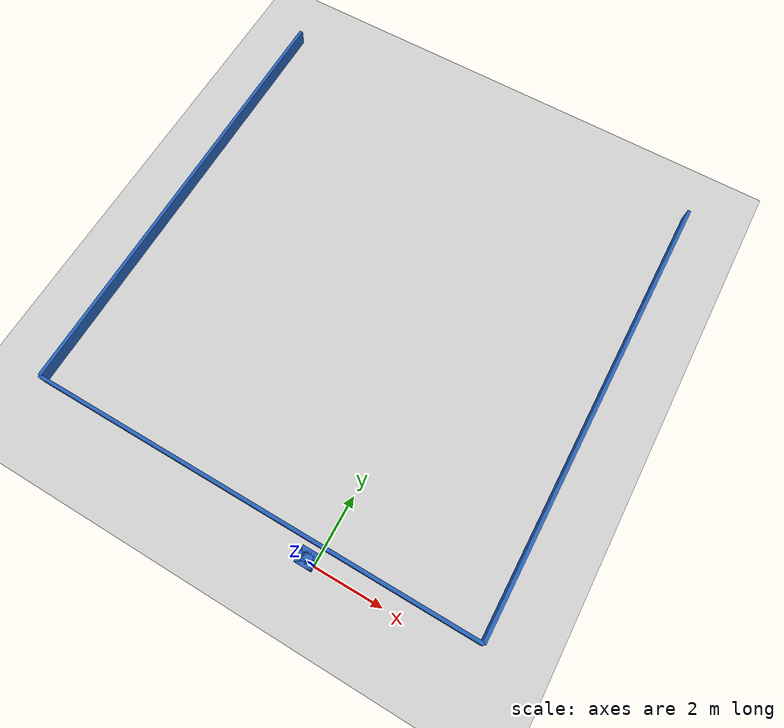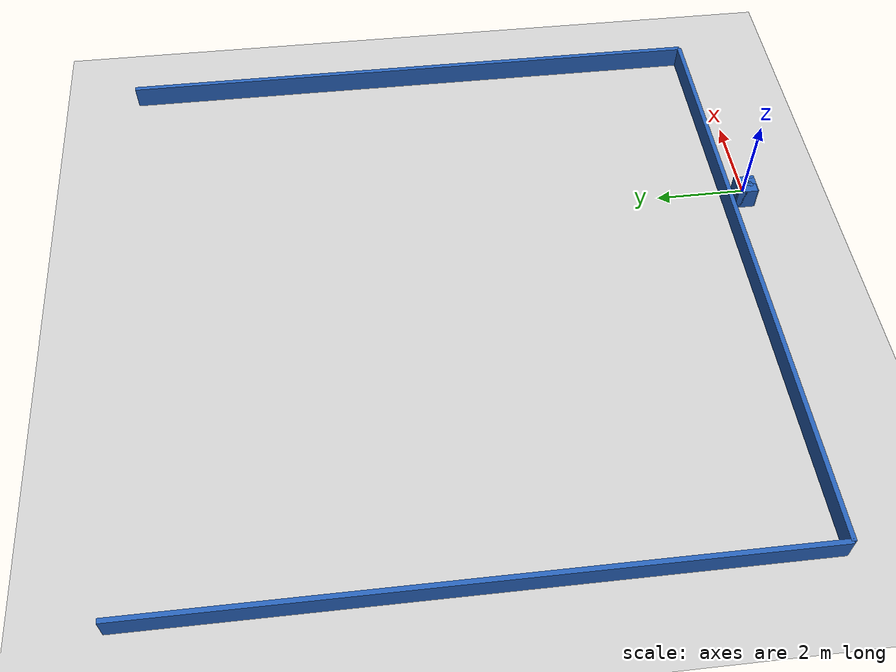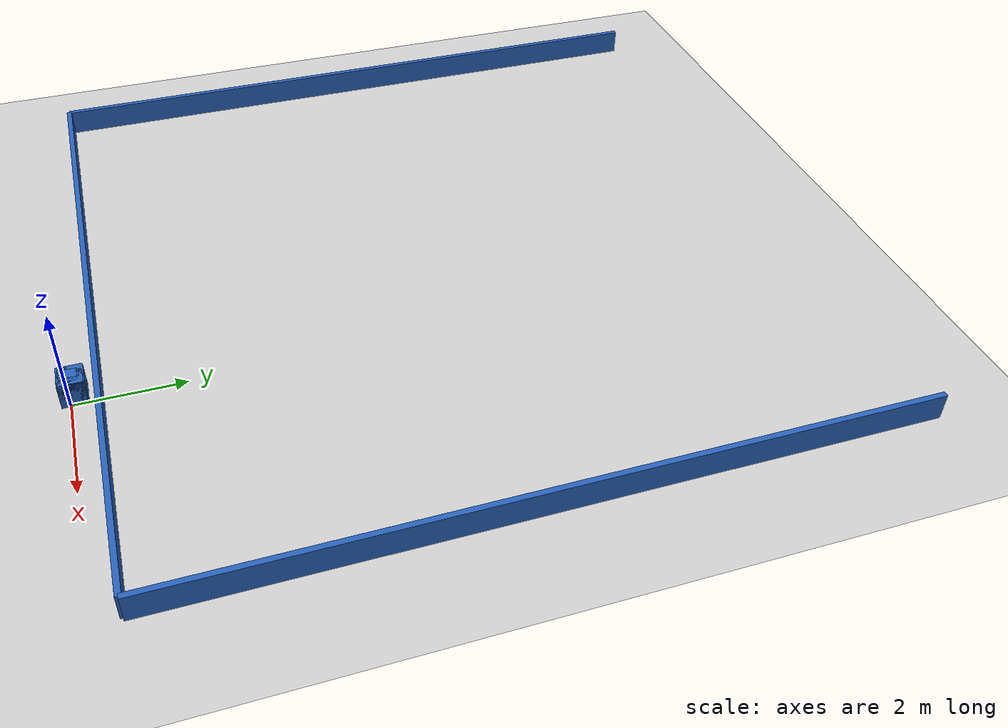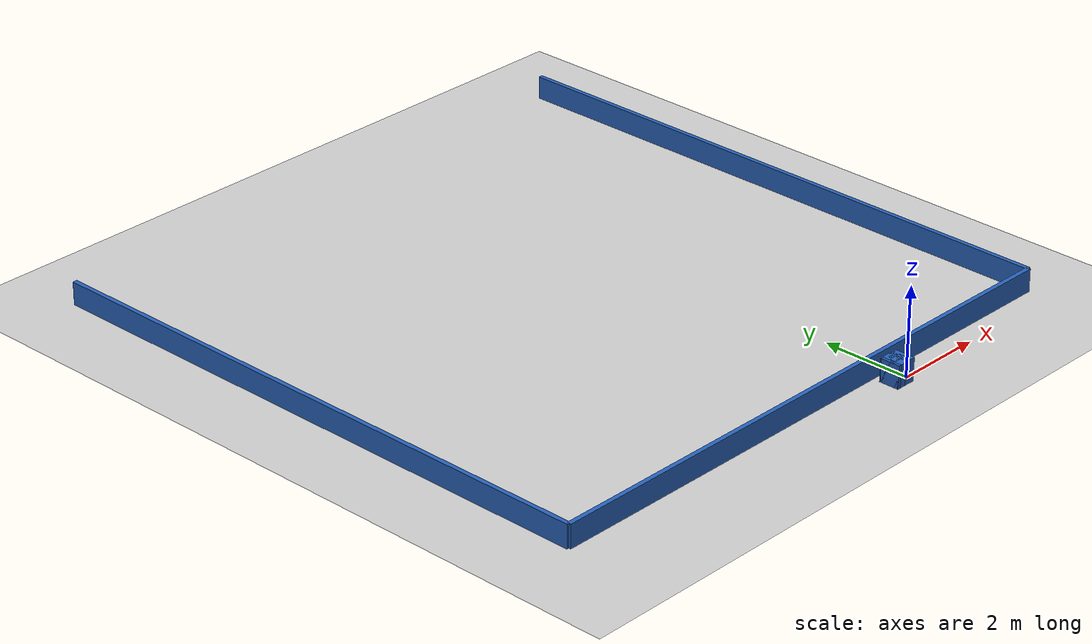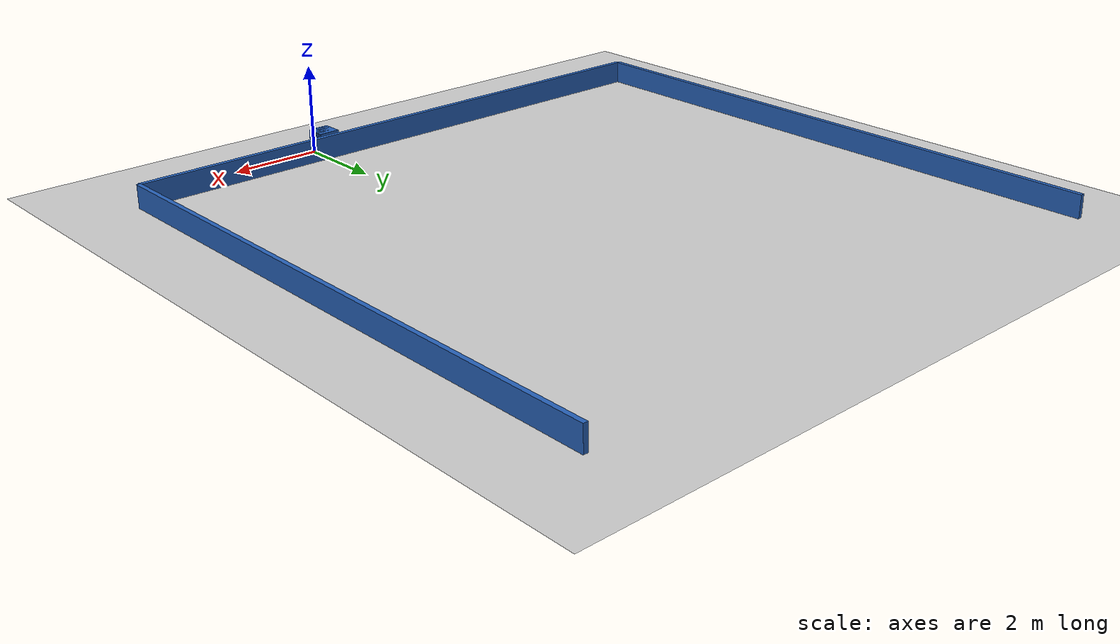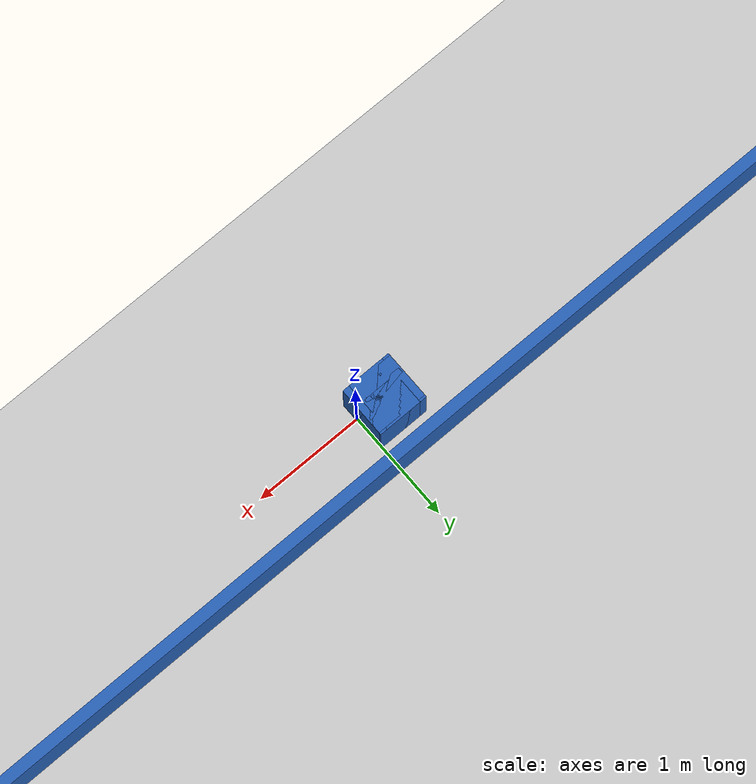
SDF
<?xml version="1.0" ?>
    <sdf version="1.5">
      <world name="default">
        <!-- A global light source -->
        <include>
          <uri>model://sun</uri>
        </include>
        <!-- A ground plane -->
        <include>
          <uri>model://ground_plane</uri>
        </include>

    <model name='libopen_space_final_T2B_111_91'>
      <static>1</static>
      <pose frame=''>-0.225000 0.075000 0.000000 0.000000 0.000000 0.000000</pose>
      <link name='link'>
        <inertial>
          <mass>1</mass>
          <inertia>
            <ixx>0.145833</ixx>
            <ixy>0</ixy>
            <ixz>0</ixz>
            <iyy>0.145833</iyy>
            <iyz>0</iyz>
            <izz>0.125</izz>
          </inertia>
        </inertial>
        <collision name='collision'>
          <geometry>
            <box>
              <size>0.13 0.30 1</size>
            </box>
          </geometry>
          <max_contacts>10</max_contacts>
          <surface>
            <contact>
              <ode/>
            </contact>
            <bounce/>
            <friction>
              <torsional>
                <ode/>
              </torsional>
              <ode/>
            </friction>
          </surface>
        </collision>
        <visual name='visual'>
          <geometry>
            <box>
              <size>0.13 0.30 1</size>
            </box>
          </geometry>
	    <material>
              <ambient>0.152000 0.379000 0.720000 1</ambient>
	      <diffuse>0.152000 0.379000 0.720000 1</diffuse>
          </material>
          <material>
            <script>
              <name>Gazebo/Grey</name>
              <uri>file://media/materials/scripts/gazebo.material</uri>
            </script>
          </material>
        </visual>
        <self_collide>0</self_collide>
        <kinematic>0</kinematic>
        <gravity>1</gravity>
      </link>
      <plugin name='libopen_space_final_T2B_111_91' filename='libopen_space_final_T2B_111_91.so'/>
    </model>

    <model name='libopen_space_final_T2B_105_38'>
      <static>1</static>
      <pose frame=''>-0.225000 0.075000 0.000000 0.000000 0.000000 0.000000</pose>
      <link name='link'>
        <inertial>
          <mass>1</mass>
          <inertia>
            <ixx>0.145833</ixx>
            <ixy>0</ixy>
            <ixz>0</ixz>
            <iyy>0.145833</iyy>
            <iyz>0</iyz>
            <izz>0.125</izz>
          </inertia>
        </inertial>
        <collision name='collision'>
          <geometry>
            <box>
              <size>0.12 0.24 1</size>
            </box>
          </geometry>
          <max_contacts>10</max_contacts>
          <surface>
            <contact>
              <ode/>
            </contact>
            <bounce/>
            <friction>
              <torsional>
                <ode/>
              </torsional>
              <ode/>
            </friction>
          </surface>
        </collision>
        <visual name='visual'>
          <geometry>
            <box>
              <size>0.12 0.24 1</size>
            </box>
          </geometry>
	    <material>
              <ambient>0.152000 0.379000 0.720000 1</ambient>
	      <diffuse>0.152000 0.379000 0.720000 1</diffuse>
          </material>
          <material>
            <script>
              <name>Gazebo/Grey</name>
              <uri>file://media/materials/scripts/gazebo.material</uri>
            </script>
          </material>
        </visual>
        <self_collide>0</self_collide>
        <kinematic>0</kinematic>
        <gravity>1</gravity>
      </link>
      <plugin name='libopen_space_final_T2B_105_38' filename='libopen_space_final_T2B_105_38.so'/>
    </model>

    <model name='libopen_space_final_T2B_119_99'>
      <static>1</static>
      <pose frame=''>-0.225000 0.075000 0.000000 0.000000 0.000000 0.000000</pose>
      <link name='link'>
        <inertial>
          <mass>1</mass>
          <inertia>
            <ixx>0.145833</ixx>
            <ixy>0</ixy>
            <ixz>0</ixz>
            <iyy>0.145833</iyy>
            <iyz>0</iyz>
            <izz>0.125</izz>
          </inertia>
        </inertial>
        <collision name='collision'>
          <geometry>
            <box>
              <size>0.47 0.42 1</size>
            </box>
          </geometry>
          <max_contacts>10</max_contacts>
          <surface>
            <contact>
              <ode/>
            </contact>
            <bounce/>
            <friction>
              <torsional>
                <ode/>
              </torsional>
              <ode/>
            </friction>
          </surface>
        </collision>
        <visual name='visual'>
          <geometry>
            <box>
              <size>0.47 0.42 1</size>
            </box>
          </geometry>
	    <material>
              <ambient>0.152000 0.379000 0.720000 1</ambient>
	      <diffuse>0.152000 0.379000 0.720000 1</diffuse>
          </material>
          <material>
            <script>
              <name>Gazebo/Grey</name>
              <uri>file://media/materials/scripts/gazebo.material</uri>
            </script>
          </material>
        </visual>
        <self_collide>0</self_collide>
        <kinematic>0</kinematic>
        <gravity>1</gravity>
      </link>
      <plugin name='libopen_space_final_T2B_119_99' filename='libopen_space_final_T2B_119_99.so'/>
    </model>

    <model name='libopen_space_final_T2B_55_44'>
      <static>1</static>
      <pose frame=''>-0.225000 0.075000 0.000000 0.000000 0.000000 0.000000</pose>
      <link name='link'>
        <inertial>
          <mass>1</mass>
          <inertia>
            <ixx>0.145833</ixx>
            <ixy>0</ixy>
            <ixz>0</ixz>
            <iyy>0.145833</iyy>
            <iyz>0</iyz>
            <izz>0.125</izz>
          </inertia>
        </inertial>
        <collision name='collision'>
          <geometry>
            <box>
              <size>0.29 0.24 1</size>
            </box>
          </geometry>
          <max_contacts>10</max_contacts>
          <surface>
            <contact>
              <ode/>
            </contact>
            <bounce/>
            <friction>
              <torsional>
                <ode/>
              </torsional>
              <ode/>
            </friction>
          </surface>
        </collision>
        <visual name='visual'>
          <geometry>
            <box>
              <size>0.29 0.24 1</size>
            </box>
          </geometry>
	    <material>
              <ambient>0.152000 0.379000 0.720000 1</ambient>
	      <diffuse>0.152000 0.379000 0.720000 1</diffuse>
          </material>
          <material>
            <script>
              <name>Gazebo/Grey</name>
              <uri>file://media/materials/scripts/gazebo.material</uri>
            </script>
          </material>
        </visual>
        <self_collide>0</self_collide>
        <kinematic>0</kinematic>
        <gravity>1</gravity>
      </link>
      <plugin name='libopen_space_final_T2B_55_44' filename='libopen_space_final_T2B_55_44.so'/>
    </model>

    <model name='libopen_space_final_T2B_61_88'>
      <static>1</static>
      <pose frame=''>-0.225000 0.075000 0.000000 0.000000 0.000000 0.000000</pose>
      <link name='link'>
        <inertial>
          <mass>1</mass>
          <inertia>
            <ixx>0.145833</ixx>
            <ixy>0</ixy>
            <ixz>0</ixz>
            <iyy>0.145833</iyy>
            <iyz>0</iyz>
            <izz>0.125</izz>
          </inertia>
        </inertial>
        <collision name='collision'>
          <geometry>
            <box>
              <size>0.17 0.30 1</size>
            </box>
          </geometry>
          <max_contacts>10</max_contacts>
          <surface>
            <contact>
              <ode/>
            </contact>
            <bounce/>
            <friction>
              <torsional>
                <ode/>
              </torsional>
              <ode/>
            </friction>
          </surface>
        </collision>
        <visual name='visual'>
          <geometry>
            <box>
              <size>0.17 0.30 1</size>
            </box>
          </geometry>
	    <material>
              <ambient>0.152000 0.379000 0.720000 1</ambient>
	      <diffuse>0.152000 0.379000 0.720000 1</diffuse>
          </material>
          <material>
            <script>
              <name>Gazebo/Grey</name>
              <uri>file://media/materials/scripts/gazebo.material</uri>
            </script>
          </material>
        </visual>
        <self_collide>0</self_collide>
        <kinematic>0</kinematic>
        <gravity>1</gravity>
      </link>
      <plugin name='libopen_space_final_T2B_61_88' filename='libopen_space_final_T2B_61_88.so'/>
    </model>

    <model name='libopen_space_final_T2B_148_40'>
      <static>1</static>
      <pose frame=''>-0.225000 0.075000 0.000000 0.000000 0.000000 0.000000</pose>
      <link name='link'>
        <inertial>
          <mass>1</mass>
          <inertia>
            <ixx>0.145833</ixx>
            <ixy>0</ixy>
            <ixz>0</ixz>
            <iyy>0.145833</iyy>
            <iyz>0</iyz>
            <izz>0.125</izz>
          </inertia>
        </inertial>
        <collision name='collision'>
          <geometry>
            <box>
              <size>0.44 0.18 1</size>
            </box>
          </geometry>
          <max_contacts>10</max_contacts>
          <surface>
            <contact>
              <ode/>
            </contact>
            <bounce/>
            <friction>
              <torsional>
                <ode/>
              </torsional>
              <ode/>
            </friction>
          </surface>
        </collision>
        <visual name='visual'>
          <geometry>
            <box>
              <size>0.44 0.18 1</size>
            </box>
          </geometry>
	    <material>
              <ambient>0.152000 0.379000 0.720000 1</ambient>
	      <diffuse>0.152000 0.379000 0.720000 1</diffuse>
          </material>
          <material>
            <script>
              <name>Gazebo/Grey</name>
              <uri>file://media/materials/scripts/gazebo.material</uri>
            </script>
          </material>
        </visual>
        <self_collide>0</self_collide>
        <kinematic>0</kinematic>
        <gravity>1</gravity>
      </link>
      <plugin name='libopen_space_final_T2B_148_40' filename='libopen_space_final_T2B_148_40.so'/>
    </model>

    <model name='libopen_space_final_T2B_105_8'>
      <static>1</static>
      <pose frame=''>-0.225000 0.075000 0.000000 0.000000 0.000000 0.000000</pose>
      <link name='link'>
        <inertial>
          <mass>1</mass>
          <inertia>
            <ixx>0.145833</ixx>
            <ixy>0</ixy>
            <ixz>0</ixz>
            <iyy>0.145833</iyy>
            <iyz>0</iyz>
            <izz>0.125</izz>
          </inertia>
        </inertial>
        <collision name='collision'>
          <geometry>
            <box>
              <size>0.47 0.46 1</size>
            </box>
          </geometry>
          <max_contacts>10</max_contacts>
          <surface>
            <contact>
              <ode/>
            </contact>
            <bounce/>
            <friction>
              <torsional>
                <ode/>
              </torsional>
              <ode/>
            </friction>
          </surface>
        </collision>
        <visual name='visual'>
          <geometry>
            <box>
              <size>0.47 0.46 1</size>
            </box>
          </geometry>
	    <material>
              <ambient>0.152000 0.379000 0.720000 1</ambient>
	      <diffuse>0.152000 0.379000 0.720000 1</diffuse>
          </material>
          <material>
            <script>
              <name>Gazebo/Grey</name>
              <uri>file://media/materials/scripts/gazebo.material</uri>
            </script>
          </material>
        </visual>
        <self_collide>0</self_collide>
        <kinematic>0</kinematic>
        <gravity>1</gravity>
      </link>
      <plugin name='libopen_space_final_T2B_105_8' filename='libopen_space_final_T2B_105_8.so'/>
    </model>

    <model name='libopen_space_final_T2B_85_62'>
      <static>1</static>
      <pose frame=''>-0.225000 0.075000 0.000000 0.000000 0.000000 0.000000</pose>
      <link name='link'>
        <inertial>
          <mass>1</mass>
          <inertia>
            <ixx>0.145833</ixx>
            <ixy>0</ixy>
            <ixz>0</ixz>
            <iyy>0.145833</iyy>
            <iyz>0</iyz>
            <izz>0.125</izz>
          </inertia>
        </inertial>
        <collision name='collision'>
          <geometry>
            <box>
              <size>0.30 0.13 1</size>
            </box>
          </geometry>
          <max_contacts>10</max_contacts>
          <surface>
            <contact>
              <ode/>
            </contact>
            <bounce/>
            <friction>
              <torsional>
                <ode/>
              </torsional>
              <ode/>
            </friction>
          </surface>
        </collision>
        <visual name='visual'>
          <geometry>
            <box>
              <size>0.30 0.13 1</size>
            </box>
          </geometry>
	    <material>
              <ambient>0.152000 0.379000 0.720000 1</ambient>
	      <diffuse>0.152000 0.379000 0.720000 1</diffuse>
          </material>
          <material>
            <script>
              <name>Gazebo/Grey</name>
              <uri>file://media/materials/scripts/gazebo.material</uri>
            </script>
          </material>
        </visual>
        <self_collide>0</self_collide>
        <kinematic>0</kinematic>
        <gravity>1</gravity>
      </link>
      <plugin name='libopen_space_final_T2B_85_62' filename='libopen_space_final_T2B_85_62.so'/>
    </model>

    <model name='libopen_space_final_T2B_73_39'>
      <static>1</static>
      <pose frame=''>-0.225000 0.075000 0.000000 0.000000 0.000000 0.000000</pose>
      <link name='link'>
        <inertial>
          <mass>1</mass>
          <inertia>
            <ixx>0.145833</ixx>
            <ixy>0</ixy>
            <ixz>0</ixz>
            <iyy>0.145833</iyy>
            <iyz>0</iyz>
            <izz>0.125</izz>
          </inertia>
        </inertial>
        <collision name='collision'>
          <geometry>
            <box>
              <size>0.19 0.11 1</size>
            </box>
          </geometry>
          <max_contacts>10</max_contacts>
          <surface>
            <contact>
              <ode/>
            </contact>
            <bounce/>
            <friction>
              <torsional>
                <ode/>
              </torsional>
              <ode/>
            </friction>
          </surface>
        </collision>
        <visual name='visual'>
          <geometry>
            <box>
              <size>0.19 0.11 1</size>
            </box>
          </geometry>
	    <material>
              <ambient>0.152000 0.379000 0.720000 1</ambient>
	      <diffuse>0.152000 0.379000 0.720000 1</diffuse>
          </material>
          <material>
            <script>
              <name>Gazebo/Grey</name>
              <uri>file://media/materials/scripts/gazebo.material</uri>
            </script>
          </material>
        </visual>
        <self_collide>0</self_collide>
        <kinematic>0</kinematic>
        <gravity>1</gravity>
      </link>
      <plugin name='libopen_space_final_T2B_73_39' filename='libopen_space_final_T2B_73_39.so'/>
    </model>

    <model name='libopen_space_final_T2B_83_23'>
      <static>1</static>
      <pose frame=''>-0.225000 0.075000 0.000000 0.000000 0.000000 0.000000</pose>
      <link name='link'>
        <inertial>
          <mass>1</mass>
          <inertia>
            <ixx>0.145833</ixx>
            <ixy>0</ixy>
            <ixz>0</ixz>
            <iyy>0.145833</iyy>
            <iyz>0</iyz>
            <izz>0.125</izz>
          </inertia>
        </inertial>
        <collision name='collision'>
          <geometry>
            <box>
              <size>0.34 0.46 1</size>
            </box>
          </geometry>
          <max_contacts>10</max_contacts>
          <surface>
            <contact>
              <ode/>
            </contact>
            <bounce/>
            <friction>
              <torsional>
                <ode/>
              </torsional>
              <ode/>
            </friction>
          </surface>
        </collision>
        <visual name='visual'>
          <geometry>
            <box>
              <size>0.34 0.46 1</size>
            </box>
          </geometry>
	    <material>
              <ambient>0.152000 0.379000 0.720000 1</ambient>
	      <diffuse>0.152000 0.379000 0.720000 1</diffuse>
          </material>
          <material>
            <script>
              <name>Gazebo/Grey</name>
              <uri>file://media/materials/scripts/gazebo.material</uri>
            </script>
          </material>
        </visual>
        <self_collide>0</self_collide>
        <kinematic>0</kinematic>
        <gravity>1</gravity>
      </link>
      <plugin name='libopen_space_final_T2B_83_23' filename='libopen_space_final_T2B_83_23.so'/>
    </model>

    <model name='libopen_space_final_T2B_77_65'>
      <static>1</static>
      <pose frame=''>-0.225000 0.075000 0.000000 0.000000 0.000000 0.000000</pose>
      <link name='link'>
        <inertial>
          <mass>1</mass>
          <inertia>
            <ixx>0.145833</ixx>
            <ixy>0</ixy>
            <ixz>0</ixz>
            <iyy>0.145833</iyy>
            <iyz>0</iyz>
            <izz>0.125</izz>
          </inertia>
        </inertial>
        <collision name='collision'>
          <geometry>
            <box>
              <size>0.26 0.15 1</size>
            </box>
          </geometry>
          <max_contacts>10</max_contacts>
          <surface>
            <contact>
              <ode/>
            </contact>
            <bounce/>
            <friction>
              <torsional>
                <ode/>
              </torsional>
              <ode/>
            </friction>
          </surface>
        </collision>
        <visual name='visual'>
          <geometry>
            <box>
              <size>0.26 0.15 1</size>
            </box>
          </geometry>
	    <material>
              <ambient>0.152000 0.379000 0.720000 1</ambient>
	      <diffuse>0.152000 0.379000 0.720000 1</diffuse>
          </material>
          <material>
            <script>
              <name>Gazebo/Grey</name>
              <uri>file://media/materials/scripts/gazebo.material</uri>
            </script>
          </material>
        </visual>
        <self_collide>0</self_collide>
        <kinematic>0</kinematic>
        <gravity>1</gravity>
      </link>
      <plugin name='libopen_space_final_T2B_77_65' filename='libopen_space_final_T2B_77_65.so'/>
    </model>

        <model name='bottom_wall'>
          <static>1</static>
          <pose frame=''>-2.25 0.5 0.000000 0.000000 0.000000 1.57079632</pose>
          <link name='link'>
            <inertial>
            <mass>1</mass>
            <inertia>
              <ixx>0.145833</ixx>
              <ixy>0</ixy>
              <ixz>0</ixz>
              <iyy>0.145833</iyy>
              <iyz>0</iyz>
              <izz>0.125</izz>
            </inertia>
            </inertial>
            <collision name='collision'>
            <geometry>
              <box>
              <size>0.1 13.5 1</size>
              </box>
            </geometry>
            <max_contacts>10</max_contacts>
            <surface>
              <contact>
              <ode/>
              </contact>
              <bounce/>
              <friction>
              <torsional>
                <ode/>
              </torsional>
              <ode/>
              </friction>
            </surface>
            </collision>
            <visual name='visual'>
            <geometry>
              <box>
              <size>0.1 13.5 1</size>
              </box>
            </geometry>
            <material>
              <ambient>0.152000 0.379000 0.720000 1</ambient>
            <diffuse>0.152000 0.379000 0.720000 1</diffuse>
            </material>
            <material>
              <script>
              <name>Gazebo/Grey</name>
              <uri>file://media/materials/scripts/gazebo.material</uri>
              </script>
            </material>
            </visual>
            <self_collide>0</self_collide>
            <kinematic>0</kinematic>
            <gravity>1</gravity>
          </link>
        </model>

        <model name='left_wall'>
          <static>1</static>
          <pose frame=''>-9 7.25 0.000000 0.000000 0.000000 0.000000</pose>
          <link name='link'>
            <inertial>
            <mass>1</mass>
            <inertia>
              <ixx>0.145833</ixx>
              <ixy>0</ixy>
              <ixz>0</ixz>
              <iyy>0.145833</iyy>
              <iyz>0</iyz>
              <izz>0.125</izz>
            </inertia>
            </inertial>
            <collision name='collision'>
            <geometry>
              <box>
              <size>0.1 13.5 1</size>
              </box>
            </geometry>
            <max_contacts>10</max_contacts>
            <surface>
              <contact>
              <ode/>
              </contact>
              <bounce/>
              <friction>
              <torsional>
                <ode/>
              </torsional>
              <ode/>
              </friction>
            </surface>
            </collision>
            <visual name='visual'>
            <geometry>
              <box>
              <size>0.1 13.5 1</size>
              </box>
            </geometry>
            <material>
              <ambient>0.152000 0.379000 0.720000 1</ambient>
            <diffuse>0.152000 0.379000 0.720000 1</diffuse>
            </material>
            <material>
              <script>
              <name>Gazebo/Grey</name>
              <uri>file://media/materials/scripts/gazebo.material</uri>
              </script>
            </material>
            </visual>
            <self_collide>0</self_collide>
            <kinematic>0</kinematic>
            <gravity>1</gravity>
          </link>
        </model>

        <model name='right_wall'>
          <static>1</static>
          <pose frame=''>4.5 7.25 0.000000 0.000000 0.000000 0.000000</pose>
          <link name='link'>
            <inertial>
            <mass>1</mass>
            <inertia>
              <ixx>0.145833</ixx>
              <ixy>0</ixy>
              <ixz>0</ixz>
              <iyy>0.145833</iyy>
              <iyz>0</iyz>
              <izz>0.125</izz>
            </inertia>
            </inertial>
            <collision name='collision'>
            <geometry>
              <box>
              <size>0.1 13.5 1</size>
              </box>
            </geometry>
            <max_contacts>10</max_contacts>
            <surface>
              <contact>
              <ode/>
              </contact>
              <bounce/>
              <friction>
              <torsional>
                <ode/>
              </torsional>
              <ode/>
              </friction>
            </surface>
            </collision>
            <visual name='visual'>
            <geometry>
              <box>
              <size>0.1 13.5 1</size>
              </box>
            </geometry>
            <material>
              <ambient>0.152000 0.379000 0.720000 1</ambient>
            <diffuse>0.152000 0.379000 0.720000 1</diffuse>
            </material>
            <material>
              <script>
              <name>Gazebo/Grey</name>
              <uri>file://media/materials/scripts/gazebo.material</uri>
              </script>
            </material>
            </visual>
            <self_collide>0</self_collide>
            <kinematic>0</kinematic>
            <gravity>1</gravity>
          </link>
        </model>

      </world>
    </sdf>"
